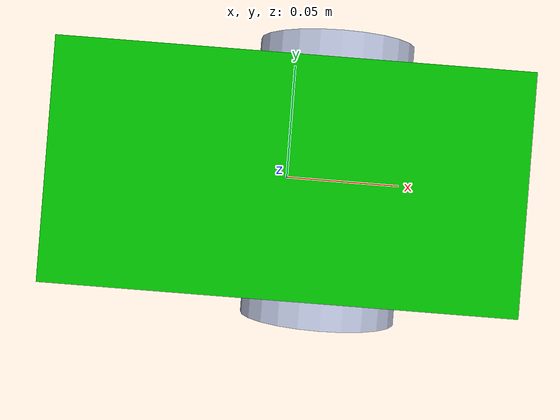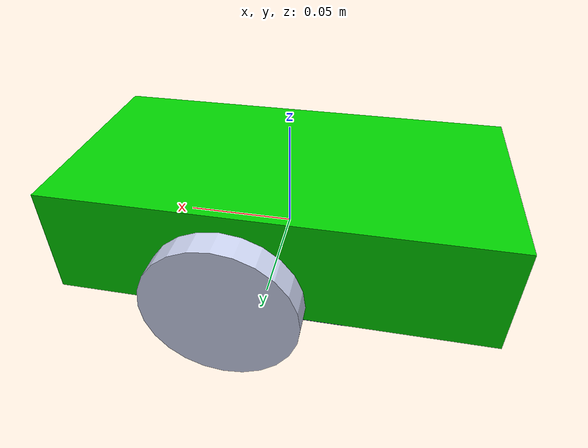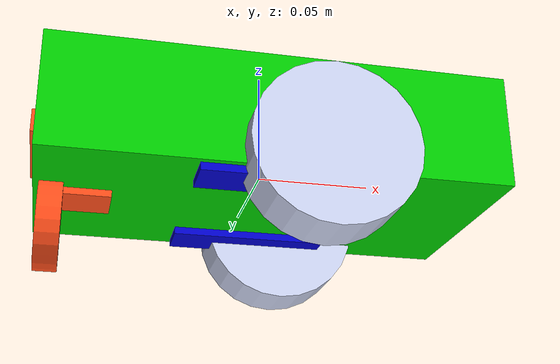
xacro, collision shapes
<?xml version="1.0"?>
<robot xmlns:xacro="http://ros.org/wiki/xacro" name="diffbot">

  <!-- === Propiedades === -->
  <!-- Definición de propiedades reutilizables como masas, colores, dimensiones de ruedas y caster -->
  <xacro:property name="chassis_mass" value="0.800"/>
  <xacro:property name="wheel_radius" value="0.035"/> <!-- Radio de la rueda en metros -->
  <xacro:property name="wheel_width" value="0.025"/> <!-- Ancho de la rueda en metros -->
  <xacro:property name="wheel_separation" value="0.16"/> <!-- Separación entre ruedas en metros -->
  <xacro:property name="caster_origin_xyz" value="-0.075 0 -0.0075"/> <!-- Posición del caster respecto al chasis -->

  <xacro:property name="base_elevation" value="0.01"/>
  <xacro:property name="base_color" value="green"/>
  <xacro:property name="wheel_color" value="silver"/>
  <xacro:property name="caster_color" value="orange"/>

  <xacro:property name="wheelSeparation" value="0.13"/>

  <!-- === Includes === -->
  <!-- Inclusión de archivos xacro auxiliares para definir macros de inercia y motor -->
  <xacro:include filename="$(find tp1_robot)/urdf/inertial_macros.xacro"/>
  <xacro:include filename="$(find tp1_robot)/urdf/motor.xacro"/>
  <xacro:include filename="$(find tp1_robot)/urdf/diffbot_gz.xacro"/>

  <link name="base_footprint"/>
  <joint name="base_joint" type="fixed">
    <parent link="base_footprint"/>
    <child link="base_link"/>
    <origin xyz="0 0 ${base_elevation}" rpy="0 0 0"/>
  </joint>

  <!-- === Chasis del robot === -->
  <!-- Definición del link principal del robot: el chasis -->
  <link name="base_link">
    <visual>
      <geometry>
        <mesh filename="file://$(find tp1_robot)/meshes/chassis.stl" scale="1 1 1"/>
      </geometry>
      <material name="${base_color}"/> <!-- Colo que se visualiza en RViz-->
    </visual>
    <collision>
      <geometry>
        <box size="0.195 0.1 0.05"/> <!-- Tamaño del chasis (x: largo, y: ancho, z: alto) -->
      </geometry>
    </collision>
    <xacro:inertial_box mass="${chassis_mass}" x="0.195" y="0.1" z="0.05"/>
  </link>

  <!-- === Macro para ruedas === -->
  <!-- Macro reutilizable para definir una rueda y su joint asociado -->
  <xacro:macro name="wheel" params="prefix xyz axis rpy">
    <joint name="wheel_${prefix}_joint" type="continuous">
      <parent link="base_link"/>
      <child link="wheel_${prefix}_link"/>
      <origin xyz="${xyz}" rpy="${rpy}"/>
      <axis xyz="${axis}"/>
    </joint>

    <link name="wheel_${prefix}_link">
      <visual>
        <origin xyz="0 0 0" rpy="1.5708 0 0"/>
        <geometry>
          <mesh filename="file://$(find tp1_robot)/meshes/wheel.stl" scale="1 1 1"/>
        </geometry>
        <material name="${wheel_color}"/> <!-- Colo que se visualiza en RViz-->
      </visual>
      <collision>
        <origin xyz="0 0 0" rpy="1.5708 0 0"/>
        <geometry>
          <cylinder radius="${wheel_radius}" length="${wheel_width}"/>
        </geometry>
      </collision>
      <xacro:inertial_cylinder mass="0.150" radius="${wheel_radius}" length="${wheel_width}">
        <origin xyz="0 0 0" rpy="0 0 0"/>
      </xacro:inertial_cylinder>
    </link>
  </xacro:macro>

  <!-- === Ruedas y motores === -->
  <!-- Instanciación de las ruedas y motores usando las macros -->
  <xacro:wheel prefix="left" xyz="0.0185  0.05 -0.0175" axis="0 1 0" rpy="0 1.5708 0"/>
  <xacro:wheel prefix="right" xyz="0.0185 -0.05 -0.0175" axis="0 1 0" rpy="0 1.5708 3.14159"/>

  <xacro:motor prefix="left" chassis_width="0.1" reflect="false"/>
  <xacro:motor prefix="right" chassis_width="0.1" reflect="true"/>

  <!-- === Caster === -->
  <!-- Definición del caster (rueda loca) y sus componentes -->

  <joint name="caster_base_joint" type="fixed">
    <parent link="base_link"/>
    <child link="caster"/>
    <origin xyz="${caster_origin_xyz}" rpy="0 0 0"/>
  </joint>

  <link name="caster">
    <visual>
      <origin xyz="0 0 0.0045" rpy="0 0 0"/>
      <geometry>
        <mesh filename="file://$(find tp1_robot)/meshes/caster_base.stl"/>
      </geometry>
      <material name="${caster_color}"/>
    </visual>
    <collision>
      <origin xyz="0 0 0.0045" rpy="0 0 0"/>
      <geometry>
        <box size="0.05 0.05 0.01"/>
      </geometry>
    </collision>
    <inertial>
      <mass value="0.020"/>
      <inertia ixx="0.001" ixy="0" ixz="0" iyy="0.001" iyz="0" izz="0.001"/>
    </inertial>
  </link>

  <!-- Rueda Loca -->

  <joint name="caster_wheel_joint" type="continuous">
    <parent link="caster_wheel_support"/>
    <child link="caster_wheel"/>
    <origin xyz="-0.015 0 -0.020" rpy="0 0 0"/>
    <axis xyz="0 1 0"/>
  </joint>

  <link name="caster_wheel">
    <visual>
      <!-- Rotamos el cilindro 90° alrededor del eje X para que su eje de giro sea el eje Y -->
      <origin xyz="0 0 0" rpy="0 1.5708 0"/>
      <geometry>
        <mesh filename="file://$(find tp1_robot)/meshes/caster_wheel.stl"/>
      </geometry>
      <material name="${caster_color}"/>
    </visual>
    <collision>
      <!-- Misma rotación para colisión -->
      <origin xyz="0 0 0" rpy="0 1.5708 0"/>
      <geometry>
        <cylinder radius="0.02" length="0.01"/>
      </geometry>
    </collision>
    <!-- Inercia orientada correctamente -->
    <xacro:inertial_cylinder mass="0.150" radius="0.02" length="0.01">
      <origin xyz="0 0 0" rpy="0 1.5708 0"/>
    </xacro:inertial_cylinder>
  </link>

  <!-- Soporte Rueda -->

  <joint name="caster_support_joint" type="continuous">
    <parent link="base_link"/>
    <child link="caster_wheel_support"/>
    <origin xyz="-0.075 0 -0.018" rpy="0 0 0"/>
    <axis xyz="0 0 1"/>
  </joint>

  <link name="caster_wheel_support">
    <visual>
      <origin xyz="0 0 0" rpy="0 0 0"/>
      <geometry>
        <mesh filename="file://$(find tp1_robot)/meshes/caster_wheel_support.stl"/>
      </geometry>
      <material name="${caster_color}"/>
    </visual>
    <collision>
      <origin xyz="0 0 0" rpy="0 0 0"/>
      <geometry>
        <box size="0.02 0.02 0.02"/>
      </geometry>
    </collision>
    <inertial>
      <mass value="0.020"/>
      <inertia ixx="0.001" ixy="0" ixz="0" iyy="0.001" iyz="0" izz="0.001"/>
    </inertial>
  </link>

  <!-- === ros2_control === -->

  <ros2_control name="DiffbotSystemHardware" type="system">
    <hardware>
      <plugin>mock_components/GenericSystem</plugin>
    </hardware>

    <joint name="left_wheel_joint">
      <command_interface name="velocity"/>
      <state_interface name="position"/>
      <state_interface name="velocity"/>
    </joint>

    <joint name="right_wheel_joint">
      <command_interface name="velocity"/>
      <state_interface name="position"/>
      <state_interface name="velocity"/>
    </joint>

    <joint name="caster_wheel_joint">
      <state_interface name="position"/>
      <state_interface name="velocity"/>
    </joint>
  </ros2_control>

</robot>

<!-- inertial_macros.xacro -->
<robot xmlns:xacro="http://www.ros.org/wiki/xacro" >
    <!-- Specify some standard inertial calculations https://en.wikipedia.org/wiki/List_of_moments_of_inertia -->
    <!-- These make use of xacro's mathematical functionality -->

    <xacro:macro name="inertial_sphere" params="mass radius *origin">
        <inertial>
            <xacro:insert_block name="origin"/>
            <mass value="${mass}" />
            <inertia ixx="${(2/5) * mass * (radius*radius)}" ixy="0.0" ixz="0.0"
                    iyy="${(2/5) * mass * (radius*radius)}" iyz="0.0"
                    izz="${(2/5) * mass * (radius*radius)}" />
        </inertial>
    </xacro:macro>

    <xacro:macro name="inertial_box" params="mass x y z">
        <inertial>
            <origin xyz="0 0 0" rpy="0 0 0"/>
            <mass value="${mass}"/>
            <inertia ixx="${(1/12) * mass * (y*y + z*z)}" ixy="0.0" ixz="0.0"
                    iyy="${(1/12) * mass * (x*x + z*z)}" iyz="0.0"
                    izz="${(1/12) * mass * (x*x + y*y)}"/>
        </inertial>
    </xacro:macro>

    <xacro:macro name="inertial_cylinder" params="mass length radius *origin">
        <inertial>
            <xacro:insert_block name="origin"/>
            <mass value="${mass}" />
            <inertia ixx="${(1/12) * mass * (3*radius*radius + length*length)}" ixy="0.0" ixz="0.0"
                    iyy="${(1/12) * mass * (3*radius*radius + length*length)}" iyz="0.0"
                    izz="${(1/2) * mass * (radius*radius)}" />
        </inertial>
    </xacro:macro>

    <xacro:macro name="dummy_inertial">
        <inertial>
            <origin xyz="0 0 0" rpy="0 0 0"/>
            <mass value="0.001"/>
            <inertia ixx="0.00001" ixy="0" ixz="0"
                     iyy="0.00001" iyz="0"
                     izz="0.00001"/>
        </inertial>
    </xacro:macro>

    <!-- RVIZ material RGBA definition -->

    <material name="red">
        <color rgba="0.8 0.0 0.0 1.0"/>
    </material>
    <material name="green">
        <color rgba="0.0 0.8 0.0 1.0"/>
    </material>
    <material name="blue">
        <color rgba="0.0 0.0 0.8 1.0"/>
    </material>
    <material name="black">
        <color rgba="0 0 0 1"/>
    </material>
    <material name="white">
        <color rgba="1 1 1 1"/>
    </material>

    <material name="orange">
        <color rgba="1 0.3 0.1 1"/>
    </material>

    <material name="silver">
        <color rgba="0.79 0.82 0.93 1"/>
    </material>
    <material name="dark_grey">
        <color rgba="0.3 0.3 0.3 1"/>
    </material>
</robot>

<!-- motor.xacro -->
<robot xmlns:xacro="http://ros.org/wiki/xacro"
       xmlns:gazebo="http://www.gazebosim.org/schema/gazebo_urdf">

    <xacro:macro name="motor" params="prefix chassis_width:=0 reflect:=false">
        <!-- Parámetros -->
        <xacro:property name="motor_mass" value="0.1"/>
        <xacro:property name="motor_x_size" value="0.07"/>
        <xacro:property name="motor_y_size" value="0.0188"/>
        <xacro:property name="motor_z_size" value="0.0225"/>

        <xacro:property name="motor_x_offset" value="0.0015"/>
        <xacro:property name="motor_y_offset" value="0.0216"/>
        <xacro:property name="motor_z_offset" value="-0.017"/>

        <xacro:property name="pos_x_joint" value="${motor_x_offset}"/>
        <xacro:property name="pos_y_joint" value="${(chassis_width/2) - motor_y_offset + (motor_y_size/2)}"/>
        <xacro:property name="pos_z_joint" value="${motor_z_offset}"/>

        <!-- Link del motor -->
        <link name="${prefix}_motor">
            <!-- Visual -->
            <visual>
                <origin xyz="0 0 0" rpy="0 0 0"/>
                <geometry>
                    <xacro:if value="${reflect}">
                        <mesh filename="file://$(find tp1_robot)/meshes/motor.stl" scale="1 -1 1"/>
                    </xacro:if>
                    <xacro:unless value="${reflect}">
                        <mesh filename="file://$(find tp1_robot)/meshes/motor.stl"/>
                    </xacro:unless>
                </geometry>
                <material name="blue"/>
            </visual>

            <!-- Colisión -->
            <collision>
                <origin xyz="0 0 0" rpy="0 0 0"/>
                <geometry>
                    <box size="${motor_x_size} ${motor_y_size} ${motor_z_size}"/>
                </geometry>
            </collision>

            <!-- Inercia -->
            <xacro:inertial_box mass="${motor_mass}" x="${motor_x_size}" y="${motor_y_size}" z="${motor_z_size}">
            </xacro:inertial_box>
        </link>

        <!-- Joint del motor -->
        <joint name="${prefix}_motor_joint" type="fixed">
            <parent link="base_link"/>
            <child link="${prefix}_motor"/>

            <xacro:if value="${reflect}">
                <origin xyz="${pos_x_joint} ${-1 * pos_y_joint} ${pos_z_joint}" rpy="0 0 0"/>
            </xacro:if>
            <xacro:unless value="${reflect}">
                <origin xyz="${pos_x_joint} ${pos_y_joint} ${pos_z_joint}" rpy="0 0 0"/>
            </xacro:unless>
        </joint>
    </xacro:macro>
</robot>
